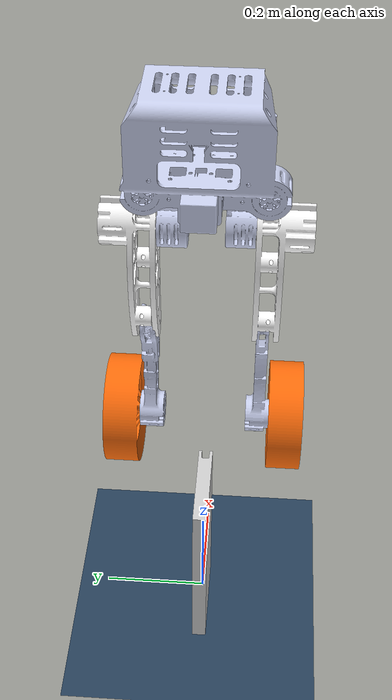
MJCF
<mujoco model="WF_GOAT_on_Stand">
    <option timestep="0.001" gravity="0 0 -9.81" integrator="implicitfast" solver="Newton" iterations="32"/>

    <!-- GOAT robot -->
    <include file="./WF_GOAT.xml"/>

    <asset>
        <!-- Stand jig -->
        <mesh name="jig_mesh" file="GOAT_stand7mm35cm.stl" scale="0.5 1 1"/>
        <material name="jig_material" rgba="0.8 0.8 0.8 1.0"/>

        <texture  name="groundplane" type="2d" builtin="checker" mark="edge" rgb1="0.2 0.3 0.4" rgb2="0.1 0.2 0.3" markrgb="0.8 0.8 0.8" width="512" height="512"/>
        <material name="groundplane" texture="groundplane" texuniform="true" texrepeat="5 5" reflectance="0.2"/>
    </asset>

    <!-- Environment setup -->
    <worldbody>
        <light directional="true" diffuse=".8 .8 .8" specular=".2 .2 .2" pos="0 0 5" dir="0 0 -1"/>
        <geom name="floor" type="plane" size="0 0 1" material="groundplane"/>
        <body name="jig_link" pos="-0.04 0 0">
            <inertial pos="0 0 0" mass="10.0" fullinertia="0.05 0.05 0.05 0.0 0.0 0.0"/>
            <geom name="jig_geom" type="mesh" mesh="jig_mesh" material="jig_material"
                  pos="0 0 0" euler="0 0 -1.570796"
                  contype="1" conaffinity="1"/>
        </body>
    </worldbody>

    <!-- Feet (wheel) contact setting -->
    <contact>
        <pair name="floor_wheel_L"
            geom1="floor"
            geom2="wheel_L_collision"
            condim="3"
            friction="0.6 0.6 0.0 0.0 0.0"
            solref="0.02 1.0"
            solimp="0.9 0.95 0.001 0.5 2"/>

        <pair name="floor_wheel_R"
            geom1="floor"
            geom2="wheel_R_collision"
            condim="3"
            friction="0.6 0.6 0.0 0.0 0.0"
            solref="0.02 1.0"
            solimp="0.9 0.95 0.001 0.5 2"/>
    </contact>

    <!-- Initial state preset -->
    <keyframe>
        <key name="home"
             qpos="0 0 0.42676   1 0 0 0   0 0.9943 1.884 0   0 -0.9943 -1.884 0"
             qvel="0 0 0       0 0 0     0 0 0 0           0 0 0 0"
             ctrl="0 0 0 0     0 0 0 0"/>
    </keyframe>
</mujoco>

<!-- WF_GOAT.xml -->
<mujoco model="WF_GOAT">
    <compiler angle="radian" coordinate="local" meshdir="../meshes/" autolimits="true"/>

    <asset>
        <mesh name="base_Link" file="base_Link_simple.stl"/>
        <mesh name="hip_L_Link" file="hip_L_Link.stl"/>
        <mesh name="hip_R_Link" file="hip_R_Link.stl"/>
        <mesh name="thigh_L_Link" file="thigh_L_Link.stl"/>
        <mesh name="thigh_R_Link" file="thigh_R_Link.stl"/>
        <mesh name="calf_L_Link" file="calf_L_Link.stl"/>
        <mesh name="calf_R_Link" file="calf_R_Link.stl"/>
        <mesh name="wheel_L_Link" file="BF_wheel_L_Link.stl"/>
        <mesh name="wheel_R_Link" file="BF_wheel_R_Link.stl"/>

        <material name="orange" rgba="1.0 0.423 0.039 1.0"/>
        <material name="black" rgba="0.792 0.819 0.933 1.0"/>
        <material name="white" rgba="1.0 1.0 1.0 1.0"/>
    </asset>

    <default>
        <geom contype="1" conaffinity="1" friction="0.6 0.1 0.1"/>
        <motor ctrllimited="true"/>
    </default>

    <!-- GOAT -->
    <worldbody>
        <body name="base_Link" pos="0 0 1.0">
            <!-- Floating base -->
            <freejoint name="root"/>
            <site name="imu_site" pos="0 0 0" size="0.01" type="sphere" rgba="1 0 0 1"/>

            <inertial pos="0 0 0" mass="3.153308" fullinertia="0.021860000 0.025170000 0.023520000 -0.000011699458 0.006702000 0.000004493943"/>
            <geom type="mesh" mesh="base_Link" material="black" pos="-0.112941 0 0.084350" contype="0" conaffinity="0" group="1"/>
            <geom type="box" size="0.107 0.100 0.095" pos="-0.011 0 0.056" group="3"/>
            <geom type="box" size="0.035 0.125 0.040" pos="0.07 0 -0.078" group="3"/>

            <body name="hip_L_Link" pos="0.049579 0.096336 -0.087088">
                <joint name="hip_L_Joint" type="hinge" axis="-1 0 0" range="-1.7453 1.0123" damping="0.05" frictionloss="0.04" armature="0.00"/>
                <inertial pos="-0.0475 -0.038265 0.000247" mass="0.326" fullinertia="0.000153800 0.000232600 0.000209300 -0.00001384168 -0.000007365016 -0.000000923815"/>
                <geom type="mesh" mesh="hip_L_Link" material="black" contype="0" conaffinity="0" group="1"/>
                <geom type="cylinder" size="0.042 0.0675" pos="-0.0535 0 0" euler="1.57 0 0" group="3"/>

                <body name="thigh_L_Link" pos="-0.054 -0.017 0">
                    <joint name="thigh_L_Joint" type="hinge" axis="0 1 0" range="-0.3840 2.0071" damping="0.08" frictionloss="0.15" armature="0.00"/>
                    <inertial pos="-0.002015 0.042352 -0.035272" mass="0.483216" fullinertia="0.002425000 0.002342000 0.000385000 -0.000020797926 -0.000075779875 -0.000378300"/>
                    <geom type="mesh" mesh="thigh_L_Link" material="white" contype="0" conaffinity="0" group="1"/>
                    <geom type="box" size="0.045 0.025 0.0725" pos="-0.011 0.016 -0.116" group="3"/>

                    <body name="calf_L_Link" pos="0 0.018 -0.205">
                        <joint name="knee_L_Joint" type="hinge" axis="0 -1 0" range="-0.523599 2.3387" damping="0.15" frictionloss="0.25" armature="0.008"/>
                        <inertial pos="0.001969 0.000712 -0.160161" mass="0.303" fullinertia="0.001598000 0.001638000 0.000095365219 0.000000705710 -0.000031199137 0.000006440235"/>
                        <geom type="mesh" mesh="calf_L_Link" material="black" contype="0" conaffinity="0" group="1"/>
                        <geom type="cylinder" size="0.0325 0.1165" pos="0 0 -0.116" group="3"/>

                        <body name="wheel_L_Link" pos="0 0.016555 -0.200">
                            <joint name="wheel_L_Joint" type="hinge" axis="0 1 0" damping="0.002" frictionloss="0.02" armature="0.00"/>
                            <inertial pos="0 0.030660 0" mass="0.985" fullinertia="0.003366000 0.006306000 0.003366000 0 0 0"/>
                            <geom type="mesh" mesh="wheel_L_Link" material="orange" contype="0" conaffinity="0" group="1"/>
                            <geom name="wheel_L_collision" type="cylinder" size="0.1 0.025" pos="0 0.03 0" euler="1.5707963267948966 0 0" group="3"/>
                        </body>
                    </body>
                </body>
            </body>

            <body name="hip_R_Link" pos="0.049579 -0.096336 -0.087088">
                <joint name="hip_R_Joint" type="hinge" axis="-1 0 0" range="-1.0123 1.7453" damping="0.05" frictionloss="0.04" armature="0.00"/>
                <inertial pos="-0.0475 0.038265 0.000247" mass="0.326" fullinertia="0.000153800 0.000232600 0.000209300 0.00001384168 -0.000007365016 0.000000923815"/>
                <geom type="mesh" mesh="hip_R_Link" material="black" contype="0" conaffinity="0" group="1"/>
                <geom type="cylinder" size="0.042 0.0675" pos="-0.0535 0 0" euler="1.57 0 0" group="3"/>

                <body name="thigh_R_Link" pos="-0.054 0.017 0">
                    <joint name="thigh_R_Joint" type="hinge" axis="0 -1 0" range="-2.0071 0.3840" damping="0.08" frictionloss="0.15" armature="0.00"/>
                    <inertial pos="-0.002015 -0.042352 -0.035272" mass="0.483216" fullinertia="0.002425000 0.002342000 0.000385000 0.000020797926 -0.000075779875 0.000378300"/>
                    <geom type="mesh" mesh="thigh_R_Link" material="white" contype="0" conaffinity="0" group="1"/>
                    <geom type="box" size="0.045 0.025 0.0725" pos="-0.011 -0.016 -0.116" group="3"/>

                    <body name="calf_R_Link" pos="0 -0.018 -0.205">
                        <joint name="knee_R_Joint" type="hinge" axis="0 1 0" range="-2.3387 0.523599" damping="0.15" frictionloss="0.25" armature="0.008"/>
                        <inertial pos="0.001969 -0.000712 -0.160161" mass="0.303" fullinertia="0.001598000 0.001638000 0.000095365219 -0.000000705710 -0.000031199137 -0.000006440235"/>
                        <geom type="mesh" mesh="calf_R_Link" material="black" contype="0" conaffinity="0" group="1"/>
                        <geom type="cylinder" size="0.0325 0.1165" pos="0 0 -0.116" group="3"/>

                        <body name="wheel_R_Link" pos="0 -0.016555 -0.200">
                            <joint name="wheel_R_Joint" type="hinge" axis="0 -1 0" damping="0.002" frictionloss="0.02" armature="0.00"/>
                            <inertial pos="0 -0.030660 0" mass="0.985" fullinertia="0.003366000 0.006306000 0.003366000 0 0 0"/>
                            <geom type="mesh" mesh="wheel_R_Link" material="orange" contype="0" conaffinity="0" group="1"/>
                            <geom name="wheel_R_collision" type="cylinder" size="0.1 0.025" pos="0 -0.03 0" euler="1.5707963267948966 0 0" group="3"/>
                        </body>
                    </body>
                </body>
            </body>
        </body>
    </worldbody>

    <!-- Joint actuator -->
    <actuator>
        <!-- 0.005s (200Hz) write delay -->
        <motor name="hip_L_Joint"   joint="hip_L_Joint"   ctrllimited="true" ctrlrange="-4.5 4.5" forcelimited="true" forcerange="-4.5 4.5" nsample="5" delay="0.005"/>
        <motor name="thigh_L_Joint" joint="thigh_L_Joint" ctrllimited="true" ctrlrange="-4.5 4.5" forcelimited="true" forcerange="-4.5 4.5" nsample="5" delay="0.005"/>
        <motor name="knee_L_Joint"  joint="knee_L_Joint"  ctrllimited="true" ctrlrange="-9.0 9.0" forcelimited="true" forcerange="-9.0 9.0" nsample="5" delay="0.005"/>
        <motor name="wheel_L_Joint" joint="wheel_L_Joint" ctrllimited="true" ctrlrange="-2.5 2.5" forcelimited="true" forcerange="-2.5 2.5" nsample="5" delay="0.005"/>
        <motor name="hip_R_Joint"   joint="hip_R_Joint"   ctrllimited="true" ctrlrange="-4.5 4.5" forcelimited="true" forcerange="-4.5 4.5" nsample="5" delay="0.005"/>
        <motor name="thigh_R_Joint" joint="thigh_R_Joint" ctrllimited="true" ctrlrange="-4.5 4.5" forcelimited="true" forcerange="-4.5 4.5" nsample="5" delay="0.005"/>
        <motor name="knee_R_Joint"  joint="knee_R_Joint"  ctrllimited="true" ctrlrange="-9.0 9.0" forcelimited="true" forcerange="-9.0 9.0" nsample="5" delay="0.005"/>
        <motor name="wheel_R_Joint" joint="wheel_R_Joint" ctrllimited="true" ctrlrange="-2.5 2.5" forcelimited="true" forcerange="-2.5 2.5" nsample="5" delay="0.005"/>
    </actuator>

    <!-- Sensor (noise isn't applied automatically) -->
    <sensor>
        <!-- IMU -->
        <!-- 0.005s (200Hz) read delay -->
        <framequat name="imu_quat" objtype="site" objname="imu_site" noise="0.01"/>
        <gyro name="imu_gyro" site="imu_site" noise="0.01" nsample="5" delay="0.005"/>

        <!-- Motor encoder -->
        <!-- 0.003s read delay -->
        <jointpos name="hip_L_Joint_pos" joint="hip_L_Joint" nsample="5" delay="0.003"/>
        <jointpos name="thigh_L_Joint_pos" joint="thigh_L_Joint" nsample="5" delay="0.003"/>
        <jointpos name="knee_L_Joint_pos" joint="knee_L_Joint" nsample="5" delay="0.003"/>
        <jointpos name="wheel_L_Joint_pos" joint="wheel_L_Joint" nsample="5" delay="0.003"/>
        <jointpos name="hip_R_Joint_pos" joint="hip_R_Joint" nsample="5" delay="0.003"/>
        <jointpos name="thigh_R_Joint_pos" joint="thigh_R_Joint" nsample="5" delay="0.003"/>
        <jointpos name="knee_R_Joint_pos" joint="knee_R_Joint" nsample="5" delay="0.003"/>
        <jointpos name="wheel_R_Joint_pos" joint="wheel_R_Joint" nsample="5" delay="0.003"/>

        <jointvel name="hip_L_Joint_vel" joint="hip_L_Joint" nsample="5" delay="0.003"/>
        <jointvel name="thigh_L_Joint_vel" joint="thigh_L_Joint" nsample="5" delay="0.003"/>
        <jointvel name="knee_L_Joint_vel" joint="knee_L_Joint" nsample="5" delay="0.003"/>
        <jointvel name="wheel_L_Joint_vel" joint="wheel_L_Joint" nsample="5" delay="0.003"/>
        <jointvel name="hip_R_Joint_vel" joint="hip_R_Joint" nsample="5" delay="0.003"/>
        <jointvel name="thigh_R_Joint_vel" joint="thigh_R_Joint" nsample="5" delay="0.003"/>
        <jointvel name="knee_R_Joint_vel" joint="knee_R_Joint" nsample="5" delay="0.003"/>
        <jointvel name="wheel_R_Joint_vel" joint="wheel_R_Joint" nsample="5" delay="0.003"/>

        <jointactuatorfrc name="hip_L_Joint_torque" joint="hip_L_Joint" nsample="5" delay="0.003"/>
        <jointactuatorfrc name="thigh_L_Joint_torque" joint="thigh_L_Joint" nsample="5" delay="0.003"/>
        <jointactuatorfrc name="knee_L_Joint_torque" joint="knee_L_Joint" nsample="5" delay="0.003"/>
        <jointactuatorfrc name="wheel_L_Joint_torque" joint="wheel_L_Joint" nsample="5" delay="0.003"/>
        <jointactuatorfrc name="hip_R_Joint_torque" joint="hip_R_Joint" nsample="5" delay="0.003"/>
        <jointactuatorfrc name="thigh_R_Joint_torque" joint="thigh_R_Joint" nsample="5" delay="0.003"/>
        <jointactuatorfrc name="knee_R_Joint_torque" joint="knee_R_Joint" nsample="5" delay="0.003"/>
        <jointactuatorfrc name="wheel_R_Joint_torque" joint="wheel_R_Joint" nsample="5" delay="0.003"/>
    </sensor>

    <!-- Turn off self collision -->
</mujoco>
